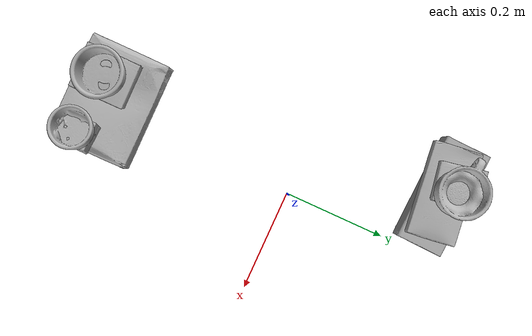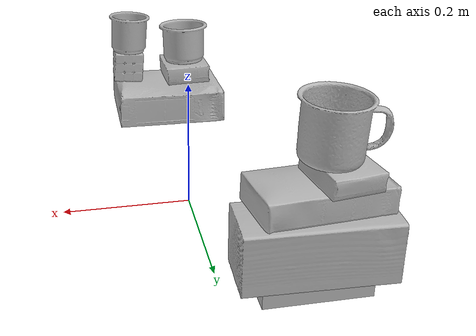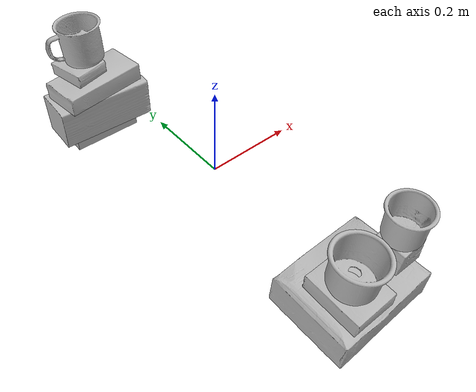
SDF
<?xml version="1.0" ?>
<sdf version="1.4">

  <world name="default">

    <light name="light1" type="point">

      <pose>0 0 1 0 0 0</pose>

      <diffuse>3 3 3 1</diffuse>

      <specular>3 3 3 1</specular>

    </light>

    <light name="light2" type="point">

      <pose>0 0.5 2 0 0 0</pose>

      <diffuse>1 1 1 1</diffuse>

      <specular>1 1 1 1</specular>

    </light>

    <light name="light3" type="point">

      <pose>0 0.5 2 0 0 0</pose>

      <diffuse>3 3 3 1</diffuse>

      <specular>3 3 3 1</specular>

    </light>

    <scene>

      <ambient>0.7 0.7 0.7</ambient>

    </scene>

    <model name="box21">

      <link name="link_box21">

        <collision name="default">

          <geometry>

            <mesh>

              <uri>model://cracker_box/collision_meshes/collision.obj</uri>

              <scale>1.0 1.0 1.0</scale>

            </mesh>

          </geometry>

          <surface>

            <friction>

              <ode>

                <mu>0.5</mu>

                <mu2>0.5</mu2>

              </ode>

            </friction>

          </surface>

        </collision>

        <visual name="default">

          <geometry>

            <mesh>

              <uri>model://cracker_box/visual_meshes/visual.dae</uri>

              <scale>1.0 1.0 1.0</scale>

            </mesh>

          </geometry>

        </visual>

        <inertial>

          <mass>1.391977071762085</mass>

          <pose>0.0009464159375056624 0.0002543424488976598 -0.0017029533628374338 -0.000316207597302205 -0.011106489600460226 0.002546794768991959</pose>

          <inertia>

            <ixx>0.0035405685</ixx>

            <iyy>0.0058461735</iyy>

            <izz>0.008343027</izz>

            <ixy>0</ixy>

            <ixz>0</ixz>

            <iyz>0</iyz>

          </inertia>

        </inertial>

      </link>

      <pose>-0.019985515624284744 -0.3797924816608429 0.036554817110300064 -4.1659877683674953e-05 -2.6666599739483724e-05 0.00045221751860452405</pose>

    </model>

    <model name="box22">

      <link name="link_box22">

        <collision name="default">

          <geometry>

            <mesh>

              <uri>model://pudding_box/collision_meshes/collision.obj</uri>

              <scale>1.0 1.0 1.0</scale>

            </mesh>

          </geometry>

          <surface>

            <friction>

              <ode>

                <mu>0.5</mu>

                <mu2>0.5</mu2>

              </ode>

            </friction>

          </surface>

        </collision>

        <visual name="default">

          <geometry>

            <mesh>

              <uri>model://pudding_box/visual_meshes/visual.dae</uri>

              <scale>1.0 1.0 1.0</scale>

            </mesh>

          </geometry>

        </visual>

        <inertial>

          <mass>0.30066633224487305</mass>

          <pose>0.0004894821904599667 0.0008067885646596551 -0.0005188827635720372 0.005213102250656644 -0.006603798267444238 0.020079828885202117</pose>

          <inertia>

            <ixx>0.0003398878</ixx>

            <iyy>0.00022867892</iyy>

            <izz>0.00050193316</izz>

            <ixy>0</ixy>

            <ixz>0</ixz>

            <iyz>0</iyz>

          </inertia>

        </inertial>

      </link>

      <pose>-0.059766992926597595 -0.4004192054271698 0.08670958876609802 0.02122841713187255 0.03579519222552995 -0.0004576851393511926</pose>

    </model>

    <model name="box23">

      <link name="link_box23">

        <collision name="default">

          <geometry>

            <mesh>

              <uri>model://rubiks_cube/collision_meshes/collision.obj</uri>

              <scale>1.0 1.0 1.0</scale>

            </mesh>

          </geometry>

          <surface>

            <friction>

              <ode>

                <mu>0.5</mu>

                <mu2>0.5</mu2>

              </ode>

            </friction>

          </surface>

        </collision>

        <visual name="default">

          <geometry>

            <mesh>

              <uri>model://rubiks_cube/visual_meshes/visual.dae</uri>

              <scale>1.0 1.0 1.0</scale>

            </mesh>

          </geometry>

        </visual>

        <inertial>

          <mass>0.26383036375045776</mass>

          <pose>2.6721041649580002e-05 5.256966323941015e-05 -7.264316082000732e-06 -0.054671492146459166 -0.0981403456898064 -0.03445706250673431</pose>

          <inertia>

            <ixx>0.000145784</ixx>

            <iyy>0.00014510413</iyy>

            <izz>0.00014699204</izz>

            <ixy>0</ixy>

            <ixz>0</ixz>

            <iyz>0</iyz>

          </inertia>

        </inertial>

      </link>

      <pose>0.057670533657073975 -0.40076273679733276 0.10187748819589615 0.018662174533472527 -0.07750484615074311 -0.0005169069939442319</pose>

    </model>

    <model name="cup1">

      <link name="link_cup1">

        <collision name="default">

          <geometry>

            <mesh>

              <uri>model://i_cups/collision_meshes/collision.obj</uri>

              <scale>1.0 1.0 1.0</scale>

            </mesh>

          </geometry>

          <surface>

            <friction>

              <ode>

                <mu>0.5</mu>

                <mu2>0.5</mu2>

              </ode>

            </friction>

          </surface>

        </collision>

        <visual name="default">

          <geometry>

            <mesh>

              <uri>model://i_cups/visual_meshes/visual.dae</uri>

              <scale>1.0 1.0 1.0</scale>

            </mesh>

          </geometry>

        </visual>

        <inertial>

          <mass>0.07817669957876205</mass>

          <pose>0.00011240140884183347 0.00016797371790744364 -0.0008579030982218683 -0.02898336998566683 -0.039872909189422004 -0.34590568894983</pose>

          <inertia>

            <ixx>0.000108236774</ixx>

            <iyy>0.000109190434</iyy>

            <izz>0.00012097212</izz>

            <ixy>0</ixy>

            <ixz>0</ixz>

            <iyz>0</iyz>

          </inertia>

        </inertial>

      </link>

      <pose>-0.05887391045689583 -0.4015685021877289 0.14255179464817047 0.039367150551949094 0.009773675455213723 -0.004959781215153734</pose>

    </model>

    <model name="cup2">

      <link name="link_cup2">

        <collision name="default">

          <geometry>

            <mesh>

              <uri>model://f_cups/collision_meshes/collision.obj</uri>

              <scale>1.0 1.0 1.0</scale>

            </mesh>

          </geometry>

          <surface>

            <friction>

              <ode>

                <mu>0.5</mu>

                <mu2>0.5</mu2>

              </ode>

            </friction>

          </surface>

        </collision>

        <visual name="default">

          <geometry>

            <mesh>

              <uri>model://f_cups/visual_meshes/visual.dae</uri>

              <scale>1.0 1.0 1.0</scale>

            </mesh>

          </geometry>

        </visual>

        <inertial>

          <mass>0.06179655343294144</mass>

          <pose>-0.003171469084918499 -0.0006240077782422304 -0.0036555363330990076 0.786228783809594 -0.26079147583364887 -0.18237327348602217</pose>

          <inertia>

            <ixx>5.8090412e-05</ixx>

            <iyy>6.0937502e-05</iyy>

            <izz>6.3437656e-05</izz>

            <ixy>0</ixy>

            <ixz>0</ixz>

            <iyz>0</iyz>

          </inertia>

        </inertial>

      </link>

      <pose>0.05301477760076523 -0.4015509784221649 0.16696229577064514 0.015927988909238768 -0.06681848158175277 0.00046121807174662703</pose>

    </model>

    <model name="box11">

      <link name="link_box11">

        <collision name="default">

          <geometry>

            <mesh>

              <uri>model://jenga/collision_meshes/collision.obj</uri>

              <scale>1.0 1.0 1.0</scale>

            </mesh>

          </geometry>

          <surface>

            <friction>

              <ode>

                <mu>0.5</mu>

                <mu2>0.5</mu2>

              </ode>

            </friction>

          </surface>

        </collision>

        <visual name="default">

          <geometry>

            <mesh>

              <uri>model://jenga/visual_meshes/visual.dae</uri>

              <scale>1.0 1.0 1.0</scale>

            </mesh>

          </geometry>

        </visual>

        <inertial>

          <mass>0.2841220796108246</mass>

          <pose>-2.5028555228345795e-07 -0.00010250010382151231 -4.0923401684267446e-05 0.0 -7.34215461761844e-07 0.0</pose>

          <inertia>

            <ixx>7.8623474e-05</ixx>

            <iyy>0.00053275056</iyy>

            <izz>0.0005687565</izz>

            <ixy>0</ixy>

            <ixz>0</ixz>

            <iyz>0</iyz>

          </inertia>

        </inertial>

      </link>

      <pose>-0.11857367306947708 0.26132670044898987 0.014993831515312195 0.0003539582514615378 1.354359870467826e-05 -0.0031951261893895426</pose>

    </model>

    <model name="box12">

      <link name="link_box12">

        <collision name="default">

          <geometry>

            <mesh>

              <uri>model://wood_block/collision_meshes/collision.obj</uri>

              <scale>1.0 1.0 1.0</scale>

            </mesh>

          </geometry>

          <surface>

            <friction>

              <ode>

                <mu>0.5</mu>

                <mu2>0.5</mu2>

              </ode>

            </friction>

          </surface>

        </collision>

        <visual name="default">

          <geometry>

            <mesh>

              <uri>model://wood_block/visual_meshes/visual.dae</uri>

              <scale>1.0 1.0 1.0</scale>

            </mesh>

          </geometry>

        </visual>

        <inertial>

          <mass>1.792885661125183</mass>

          <pose>-5.813315510749817e-06 -0.0005708095268346369 0.0002640858292579651 -0.0522099864925601 -0.005192695938411627 -0.006861379223067069</pose>

          <inertia>

            <ixx>0.0023991528</ixx>

            <iyy>0.007578924</iyy>

            <izz>0.007550574</izz>

            <ixy>0</ixy>

            <ixz>0</ixz>

            <iyz>0</iyz>

          </inertia>

        </inertial>

      </link>

      <pose>-0.11594626307487488 0.2618057131767273 0.07504046708345413 -0.006435802182734453 0.007717902176284025 -0.036621298726072345</pose>

    </model>

    <model name="box13">

      <link name="link_box13">

        <collision name="default">

          <geometry>

            <mesh>

              <uri>model://sugar_box/collision_meshes/collision.obj</uri>

              <scale>1.0 1.0 1.0</scale>

            </mesh>

          </geometry>

          <surface>

            <friction>

              <ode>

                <mu>0.5</mu>

                <mu2>0.5</mu2>

              </ode>

            </friction>

          </surface>

        </collision>

        <visual name="default">

          <geometry>

            <mesh>

              <uri>model://sugar_box/visual_meshes/visual.dae</uri>

              <scale>1.0 1.0 1.0</scale>

            </mesh>

          </geometry>

        </visual>

        <inertial>

          <mass>0.8825364708900452</mass>

          <pose>0.0010343727190047503 3.8491099985549226e-05 -0.00036364805418998003 -0.0004046260965456432 0.0010506635219437153 0.002615379021860657</pose>

          <inertia>

            <ixx>0.0007353271</ixx>

            <iyy>0.0023767278</iyy>

            <izz>0.002845227</izz>

            <ixy>0</ixy>

            <ixz>0</ixz>

            <iyz>0</iyz>

          </inertia>

        </inertial>

      </link>

      <pose>-0.11981833726167679 0.2547898292541504 0.1434975117444992 -0.005612708835284931 -0.020476473287176875 0.11338451728087524</pose>

    </model>

    <model name="box14">

      <link name="link_box14">

        <collision name="default">

          <geometry>

            <mesh>

              <uri>model://gelatin_box/collision_meshes/collision.obj</uri>

              <scale>1.0 1.0 1.0</scale>

            </mesh>

          </geometry>

          <surface>

            <friction>

              <ode>

                <mu>0.5</mu>

                <mu2>0.5</mu2>

              </ode>

            </friction>

          </surface>

        </collision>

        <visual name="default">

          <geometry>

            <mesh>

              <uri>model://gelatin_box/visual_meshes/visual.dae</uri>

              <scale>1.0 1.0 1.0</scale>

            </mesh>

          </geometry>

        </visual>

        <inertial>

          <mass>0.13771659135818481</mass>

          <pose>0.0004319618456065655 0.00011156871914863586 -0.0003640321083366871 -0.0010503722043797578 -0.004755819155943452 0.016440555746729004</pose>

          <inertia>

            <ixx>9.721668e-05</ixx>

            <iyy>6.944137e-05</iyy>

            <izz>0.00014798543</izz>

            <ixy>0</ixy>

            <ixz>0</ixz>

            <iyz>0</iyz>

          </inertia>

        </inertial>

      </link>

      <pose>-0.1413363814353943 0.26773250102996826 0.18003663420677185 -0.037061992022657565 -0.035996684498335894 0.17884953574093718</pose>

    </model>

    <model name="cup15">

      <link name="link_cup15">

        <collision name="default">

          <geometry>

            <mesh>

              <uri>model://mug/collision_meshes/collision.obj</uri>

              <scale>1.0 1.0 1.0</scale>

            </mesh>

          </geometry>

          <surface>

            <friction>

              <ode>

                <mu>0.5</mu>

                <mu2>0.5</mu2>

              </ode>

            </friction>

          </surface>

        </collision>

        <visual name="default">

          <geometry>

            <mesh>

              <uri>model://mug/visual_meshes/visual.dae</uri>

              <scale>1.0 1.0 1.0</scale>

            </mesh>

          </geometry>

        </visual>

        <inertial>

          <mass>0.09286905825138092</mass>

          <pose>0.009571668691933155 0.0008143252343870699 -0.010947328992187977 -0.12983168029791675 0.08737751579099198 0.05507277032354666</pose>

          <inertia>

            <ixx>9.2248694e-05</ixx>

            <iyy>0.00010303637</iyy>

            <izz>0.00011916295</izz>

            <ixy>0</ixy>

            <ixz>0</ixz>

            <iyz>0</iyz>

          </inertia>

        </inertial>

      </link>

      <pose>-0.13887277245521545 0.2680667042732239 0.23544512689113617 -0.022238822581074322 -0.03843902358186903 -0.14829205934054593</pose>

    </model>

  </world>

</sdf>
